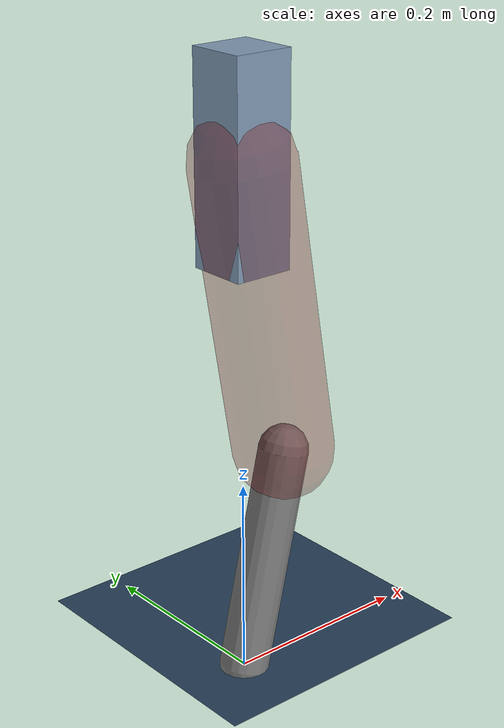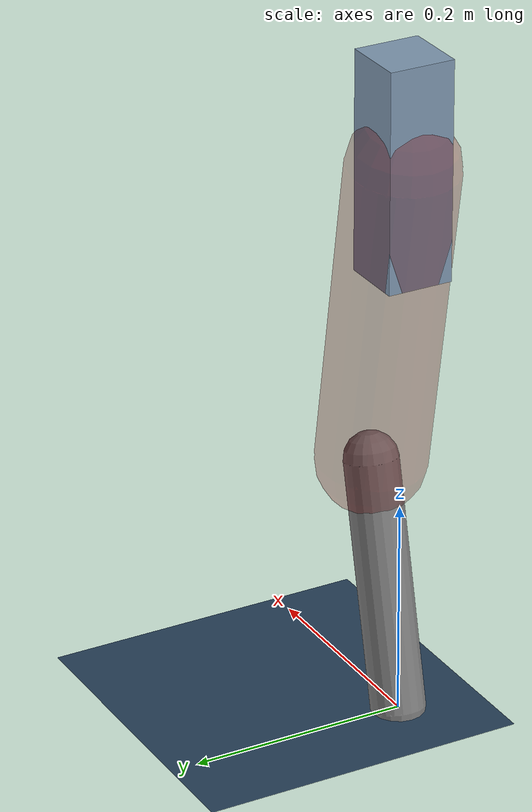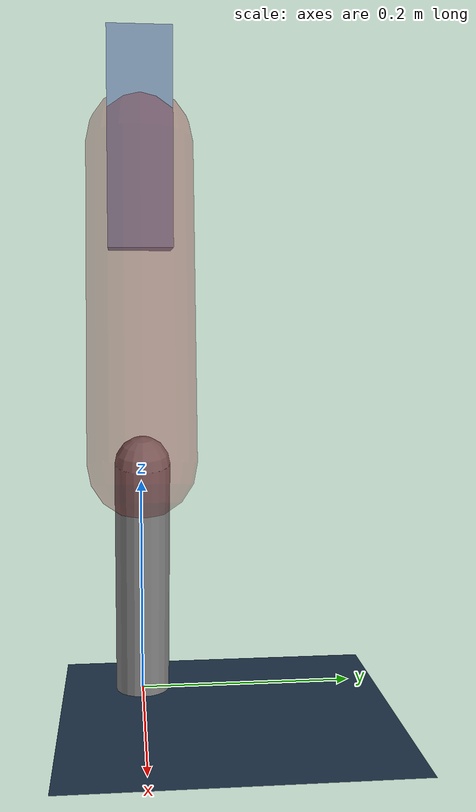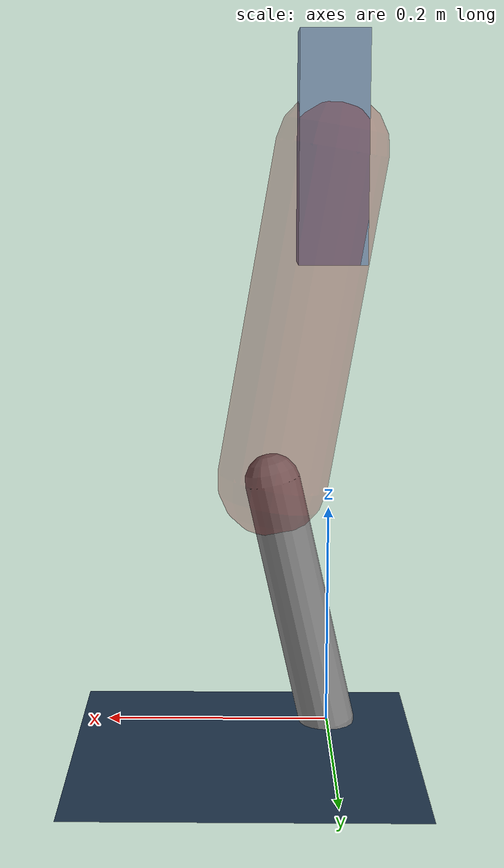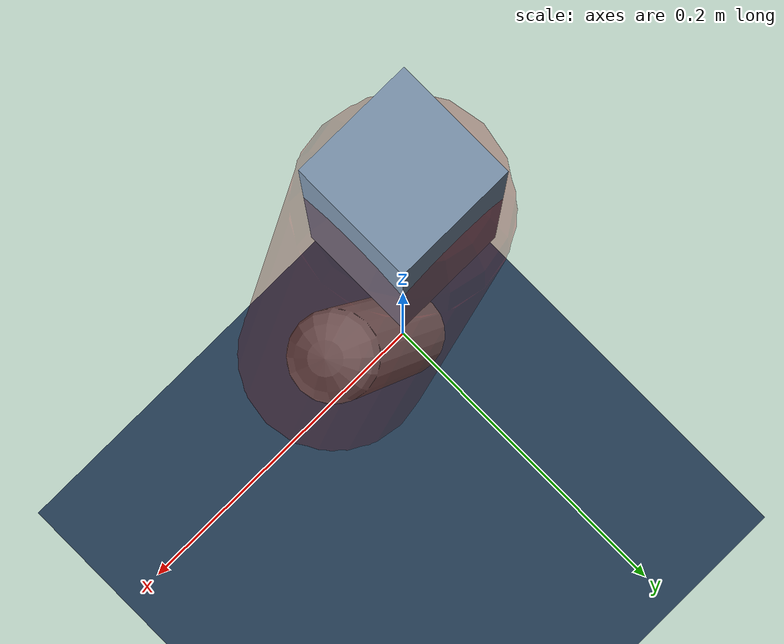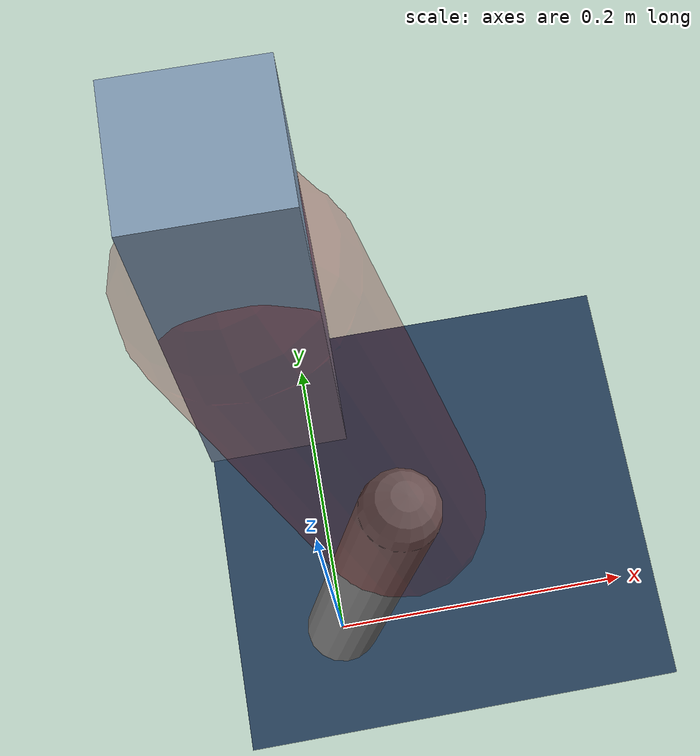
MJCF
<mujoco model="Hopper2D">
	<compiler inertiafromgeom="true" angle="radian" />
	<option timestep="0.001" integrator="implicit" cone="elliptic" solver="Newton" tolerance="1e-10" />

	<default>
		<geom contype="1" conaffinity="1" condim="3" friction="2 0.005 0.0001" solref="0.005 1" />
		<joint limited="true" damping="0.1" />
	</default>

	<asset>
		<texture name="skybox" type="skybox" builtin="gradient" rgb1=".4 .6 .8" rgb2="0 0 0" width="800" height="800" />
		<texture name="grid" type="2d" builtin="checker" rgb1=".1 .2 .3" rgb2=".2 .3 .4" width="300" height="300" mark="edge" markrgb=".2 .3 .4" />
		<material name="ground" texture="grid" texrepeat="1 1" texuniform="true" reflectance="0.1" />
		<material name="leg" rgba="0.5 0.6 0.7 1" />
	</asset>

	<worldbody>

		<geom name="floor" type="plane" size="5 5 0.25" material="ground" />

		<light directional="false" diffuse="0.8 0.8 0.8" specular="0.3 0.3 0.3" pos="0 0 2" dir="0 0 -1" />
		<light mode="targetbodycom" target="base" directional="false" diffuse="0.8 0.8 0.8" specular="0.3 0.3 0.3" pos="0 0 2" dir="0 0 -1" />

		<camera name="fixed" pos="0 -2 1" xyaxes="1 0 0 0 0 1" />
		<camera name="tracking" mode="trackcom" pos="0 -3 1" />

		<body name="root" pos="0 0 0.5201476684863342">
			<joint name="slide_x" type="slide" axis="1 0 0" range="-100 100" />
			<joint name="slide_z" type="slide" axis="0 0 1" range="0 10" />

			<body name="base" pos="0 0 0">
				<geom name="torso" type="box" size="0.03 0.03 0.1" mass="2.043" material="leg" />

				<body name="link1" pos="0 0 0" euler="0 1.4007265915625564 0">
					<joint type="hinge" axis="0 -1 0" pos="0 0 0" name="hinge1" limited="true" range="-3.14 3.14" stiffness="0" damping="0.1" />
					<geom name="thigh" type="capsule" fromto="0 0 0 0.30001258784862994 0 0" size="0.05" rgba="0.5 0 0 0.3" mass="0.9887339871913009" />

					<body name="link2" pos="0.30001258784862994 0 0" euler="0 0.39254233257927096 0">
						<joint type="hinge" axis="0 -1 0" pos="0 0 0" name="hinge2" limited="true" range="-3.14 3.14" stiffness="0" damping="0.1" />
						<geom name="shank" type="capsule" fromto="0 0 0 0.23013508063770433 0 0" size="0.025" mass="0.4261080645101634" />

					</body>
				</body>
			</body>
		</body>
	</worldbody>

	<actuator>
		<motor name="torque1" joint="hinge1" ctrlrange="-38.452502674907834 38.452502674907834" ctrllimited="true" gear="1" />
		<motor name="torque2" joint="hinge2" ctrlrange="-91.94605618350124 91.94605618350124" ctrllimited="true" gear="1" />
	</actuator>
</mujoco>
